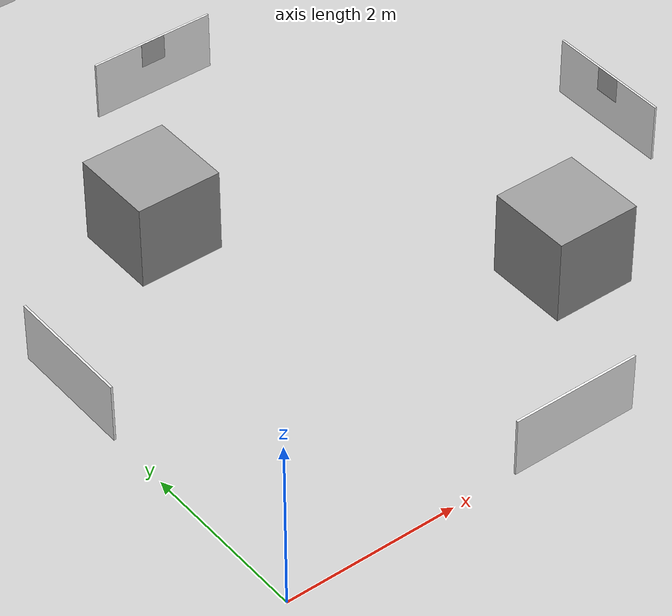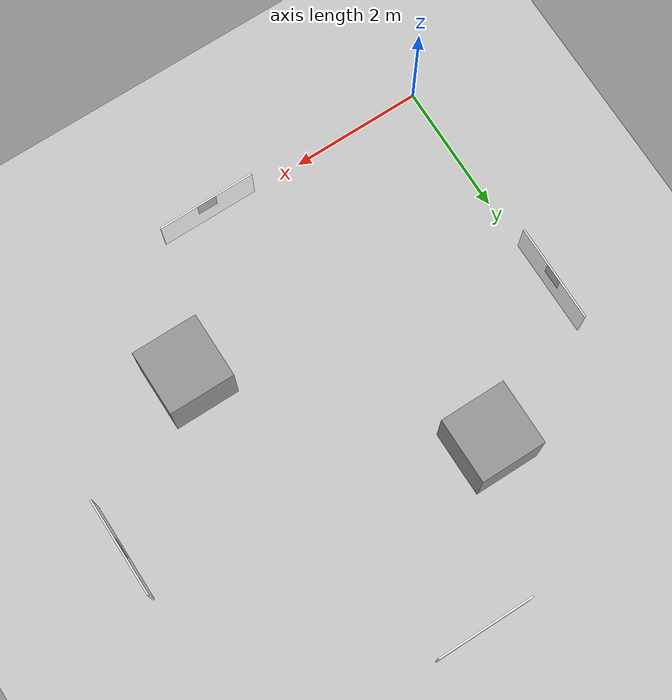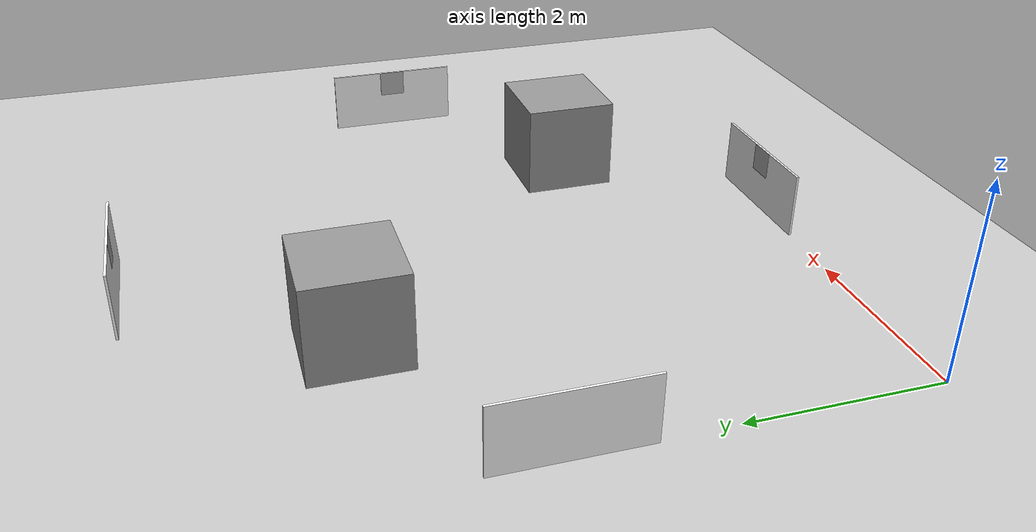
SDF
<sdf version="1.7">
 <world name="default">
  <light name="sun" type="directional">
   <pose>0 0 10 0 -0 0</pose>
   <diffuse>0.8 0.8 0.8 1</diffuse>
   <specular>0.2 0.2 0.2 1</specular>
   <attenuation>
    <range>1000</range>
    <constant>0.9</constant>
    <linear>0.01</linear>
    <quadratic>0.001</quadratic>
   </attenuation>
   <direction>-0.5 0.1 -0.9</direction>
   <spot><inner_angle>0</inner_angle><outer_angle>0</outer_angle><falloff>0</falloff></spot>
  </light>
  <model name="wall_top_int">
   <static>1</static>
   <link name="link">
    <visual name="visual">
     <geometry><box><size>1.5 0.025 0.7</size></box></geometry>
     <material><ambient>1 1 1 1</ambient></material>
    </visual>
    <collision name="collision"><geometry><box><size>1.5 0.025 0.7</size></box></geometry></collision>
   </link>
   <pose>3.5 7.01 0.35 0 -0 0</pose>
  </model>
  <model name="ground_plane">
   <pose>0 0 0 0 -0 1.5</pose>
   <static>1</static>
   <link name="link">
    <collision name="collision">
     <geometry><plane><normal>0 0 1</normal><size>100 100</size></plane></geometry>
     <surface><friction><ode><mu>100</mu><mu2>50</mu2></ode></friction></surface>
    </collision>
    <visual name="visual">
     <cast_shadows>0</cast_shadows>
     <geometry><plane><normal>0 0 1</normal><size>100 100</size></plane></geometry>
     <material>
      <script><uri>file://media/materials/scripts/gazebo.material</uri><name>Gazebo/Grey</name></script>
     </material>
    </visual>
   </link>
  </model>
  <gravity>0 0 -9.8</gravity>
  <magnetic_field>6e-06 2.3e-05 -4.2e-05</magnetic_field>
  <atmosphere type="adiabatic"/>
  <physics type="ode">
   <max_step_size>0.001</max_step_size>
   <real_time_factor>1</real_time_factor>
   <real_time_update_rate>1000</real_time_update_rate>
  </physics>
  <scene><ambient>0.4 0.4 0.4 1</ambient><background>0.7 0.7 0.7 1</background><shadows>1</shadows></scene>
  <audio><device>default</device></audio>
  <spherical_coordinates>
   <surface_model>EARTH_WGS84</surface_model>
   <latitude_deg>0</latitude_deg>
   <longitude_deg>0</longitude_deg>
   <elevation>0</elevation>
   <heading_deg>0</heading_deg>
  </spherical_coordinates>
  <model name="5x5_1000-30">
   <static>1</static>
   <link name="link">
    <visual name="visual">
     <geometry>
      <mesh><uri>model://5x5_1000-30/meshes/5x5_1000-30.dae</uri><scale>0.6 0.6 0.6</scale></mesh>
     </geometry>
    </visual>
   </link>
   <pose>7 3.5 0.4 0 -0 0</pose>
  </model>
  <model name="5x5_1000-31">
   <static>1</static>
   <link name="link">
    <visual name="visual">
     <geometry>
      <mesh><uri>model://5x5_1000-31/meshes/5x5_1000-31.dae</uri><scale>0.6 0.6 0.6</scale></mesh>
     </geometry>
    </visual>
   </link>
   <pose>3.5 7 0.4 0 -0 1.57079</pose>
  </model>
  <model name="5x5_1000-32">
   <static>1</static>
   <link name="link">
    <visual name="visual">
     <geometry>
      <mesh><uri>model://5x5_1000-32/meshes/5x5_1000-32.dae</uri><scale>0.6 0.6 0.6</scale></mesh>
     </geometry>
    </visual>
   </link>
   <pose>0 3.5 0.4 0 -0 0</pose>
  </model>
  <model name="5x5_1000-33">
   <static>1</static>
   <link name="link">
    <visual name="visual">
     <geometry>
      <mesh><uri>model://5x5_1000-33/meshes/5x5_1000-33.dae</uri><scale>0.6 0.6 0.6</scale></mesh>
     </geometry>
    </visual>
   </link>
   <pose>3.5 0 0.4 0 -0 1.57079</pose>
  </model>
  <model name="wall_top_int_clone">
   <static>1</static>
   <link name="link">
    <visual name="visual">
     <geometry><box><size>1.5 0.025 0.7</size></box></geometry>
     <material><ambient>1 1 1 1</ambient></material>
    </visual>
    <collision name="collision"><geometry><box><size>1.5 0.025 0.7</size></box></geometry></collision>
   </link>
   <pose>7.01 3.5 0.35 0 -0 1.57</pose>
  </model>
  <model name="wall_top_int_clone_clone">
   <static>1</static>
   <link name="link">
    <visual name="visual">
     <geometry><box><size>1.5 0.025 0.7</size></box></geometry>
     <material><ambient>1 1 1 1</ambient></material>
    </visual>
    <collision name="collision"><geometry><box><size>1.5 0.025 0.7</size></box></geometry></collision>
   </link>
   <pose>3.5 -0.01 0.35 0 -0 0</pose>
  </model>
  <model name="wall_top_int_clone_clone_0">
   <static>1</static>
   <link name="link">
    <visual name="visual">
     <geometry><box><size>1.5 0.025 0.7</size></box></geometry>
     <material><ambient>1 1 1 1</ambient></material>
    </visual>
    <collision name="collision"><geometry><box><size>1.5 0.1 0.7</size></box></geometry></collision>
   </link>
   <pose>-0.01 3.5 0.35 0 -0 1.57</pose>
  </model>
  <model name="unit_box">
   <pose>2.01331 4.926 0.499995 -1e-05 -0 0</pose>
   <link name="link">
    <inertial>
     <mass>1</mass>
     <inertia>
      <ixx>0.166667</ixx>
      <ixy>0</ixy>
      <ixz>0</ixz>
      <iyy>0.166667</iyy>
      <iyz>0</iyz>
      <izz>0.166667</izz>
     </inertia>
    </inertial>
    <collision name="collision"><geometry><box><size>1 1 1</size></box></geometry></collision>
    <visual name="visual">
     <geometry><box><size>1 1 1</size></box></geometry>
     <material>
      <script><name>Gazebo/Grey</name><uri>file://media/materials/scripts/gazebo.material</uri></script>
     </material>
    </visual>
   </link>
  </model>
  <model name="unit_box_0">
   <pose>5.01145 1.90418 0.5 0 -0 0</pose>
   <link name="link">
    <inertial>
     <mass>1</mass>
     <inertia>
      <ixx>0.166667</ixx>
      <ixy>0</ixy>
      <ixz>0</ixz>
      <iyy>0.166667</iyy>
      <iyz>0</iyz>
      <izz>0.166667</izz>
     </inertia>
    </inertial>
    <collision name="collision"><geometry><box><size>1 1 1</size></box></geometry></collision>
    <visual name="visual">
     <geometry><box><size>1 1 1</size></box></geometry>
     <material>
      <script><name>Gazebo/Grey</name><uri>file://media/materials/scripts/gazebo.material</uri></script>
     </material>
    </visual>
   </link>
  </model>
 </world>
</sdf>
